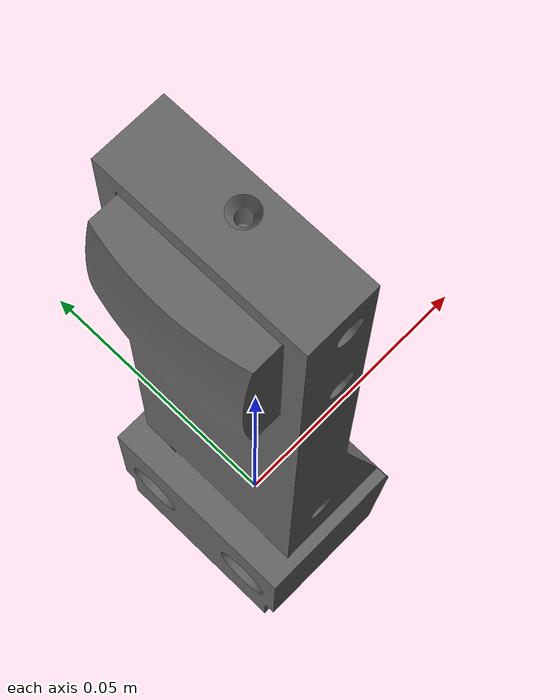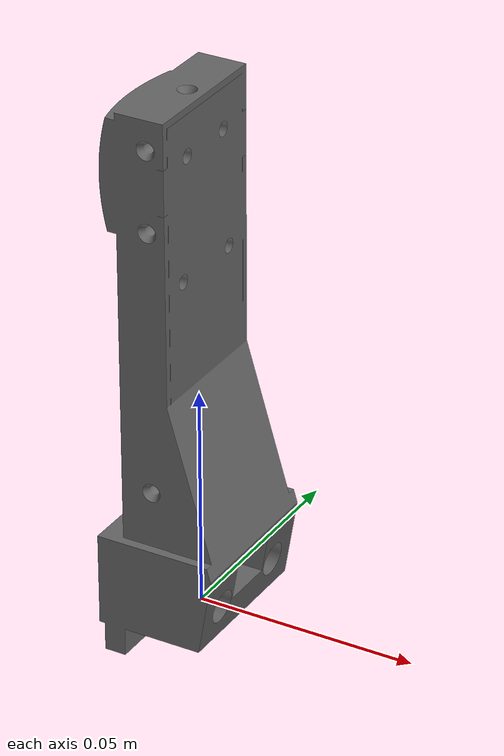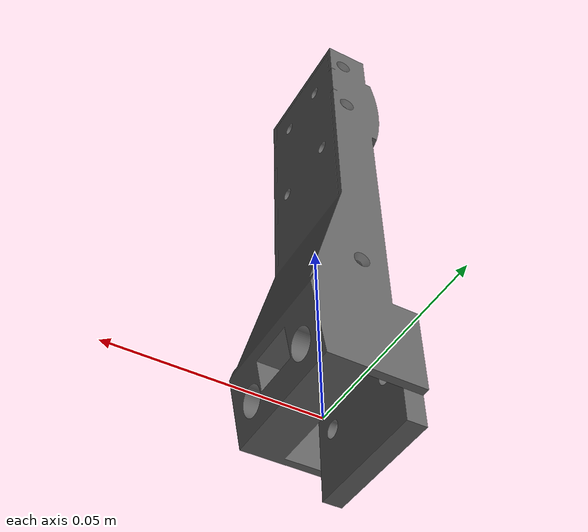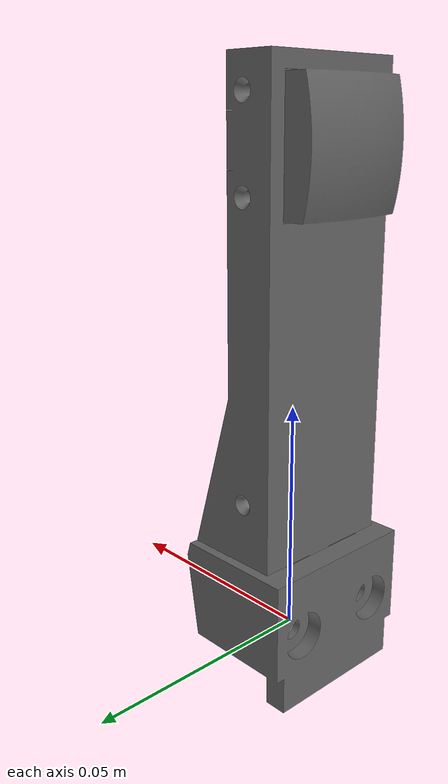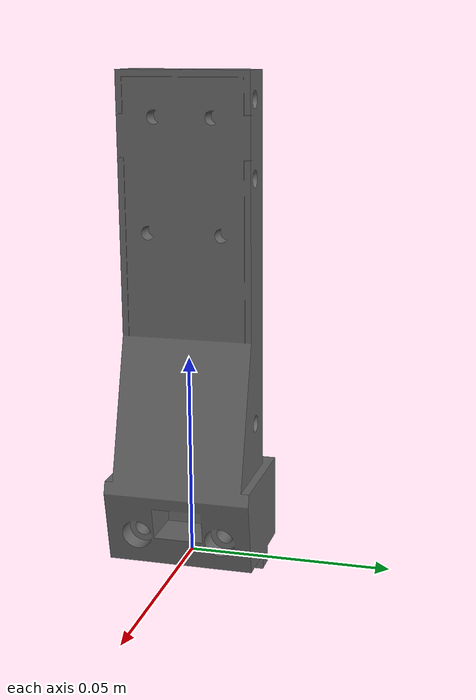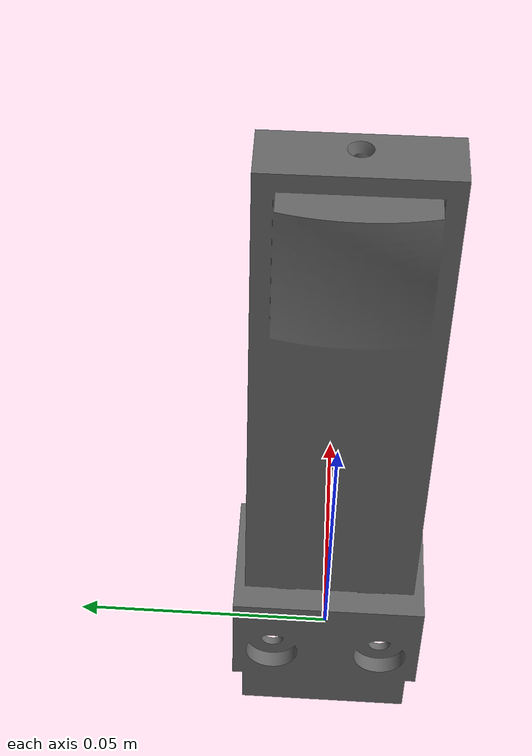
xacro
<?xml version="1.0"?>
<robot name="sun_finger_v3" xmlns:xacro="http://www.ros.org/wiki/xacro">

  <!-- Import finger macro -->
  <xacro:include filename="$(find sun_tactile_simulation)/urdf/sun_finger_v3a.xacro" />

  <xacro:sun_finger_v3a
    scale="1.0"
    base_link="base_link"
    prefix="finger0/"
    create_sensor_link="true"
  />

</robot>

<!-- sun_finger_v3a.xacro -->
<robot xmlns:xacro="http://www.ros.org/wiki/xacro">

<xacro:macro
    name="sun_finger_v3a"
    params="
        scale:=1.0
        base_link:=base_link
        prefix:=''
        create_sensor_link:=true
        create_sphere_link:=false
        "
>

    <!-- cad_scale to convert from cad to [m] -->
    <xacro:property name="cad_scale" value="0.001"/>
    <!-- local_scale cad to input scale -->
    <xacro:property name="local_scale" value="${cad_scale*scale}"/>
    <!-- origin of mesh wrt link frame -->
    <xacro:property name="mesh_origin">
        <!--origin xyz="${-56.9550247192*local_scale} ${-45.514275551*local_scale} ${0.00445556640625*local_scale}" rpy="${pi/2.0} ${0.0} ${pi/2}" /-->
    </xacro:property>

    <!-- finger link -->
    <link name="${prefix}${base_link}">
        <visual>
            <xacro:insert_block name="mesh_origin" />
            <geometry>
                <mesh
                    filename="package://sun_tactile_simulation/meshes/visual/sun_finger_v3a.stl"
                    scale="${local_scale} ${local_scale} ${local_scale}"
                />
            </geometry>
            <material name="gray">
                <color rgba="0.4 0.4 0.4 1.0"/>
            </material>
        </visual>
        <collision>
            <xacro:insert_block name="mesh_origin" />
            <geometry>
                <mesh
                    filename="package://sun_tactile_simulation/meshes/collision/sun_finger_v3a.stl"
                    scale="${local_scale} ${local_scale} ${local_scale}"
                />
            </geometry>
        </collision>
    </link> <!-- end finger link -->

    <!-- sphere frame -->
    <xacro:if value="${create_sphere_link}">
        <link name="${prefix}sphere_frame" />
        <joint name="${prefix}${base_link}-sphere_frame" type="fixed">
            <parent link="${prefix}${base_link}" />
            <child link="${prefix}sphere_frame" />
            <origin xyz="${-0.0333817*scale} 0 ${0.1018950*scale}" rpy="${pi/2} 0 ${pi/2}" />
        </joint>
    </xacro:if>

    <!-- sensor frame -->
    <xacro:if value="${create_sensor_link}">
        <link name="${prefix}sensor_frame" />
        <joint name="${prefix}${base_link}-sensor_frame" type="fixed">
            <parent link="${prefix}${base_link}" />
            <child link="${prefix}sensor_frame" />
            <origin xyz="${-scale*0.015} 0.000 ${scale*0.1018950}" rpy="${pi/2} 0 ${pi/2}" />
        </joint>
    </xacro:if>

</xacro:macro> <!-- end finger macro -->

</robot>
